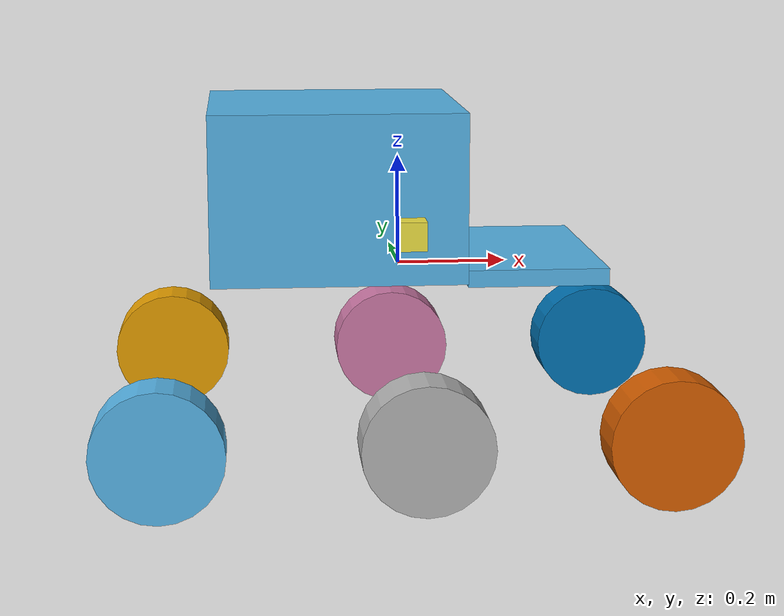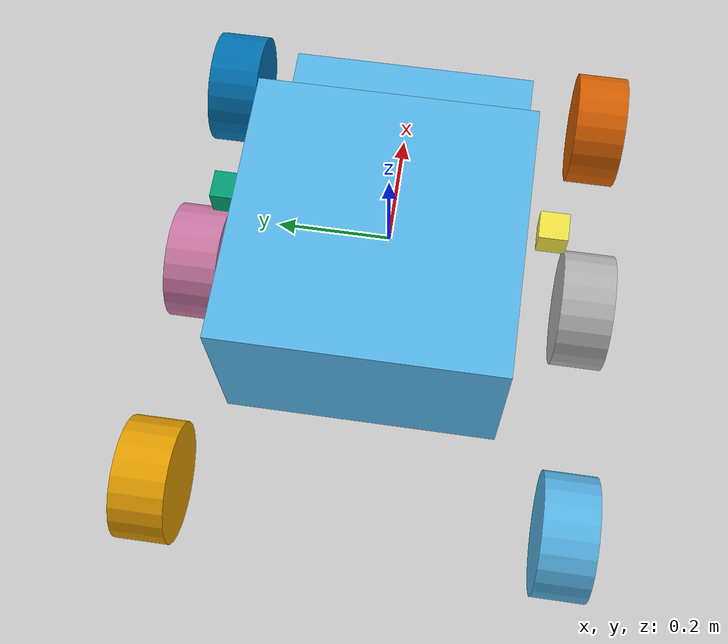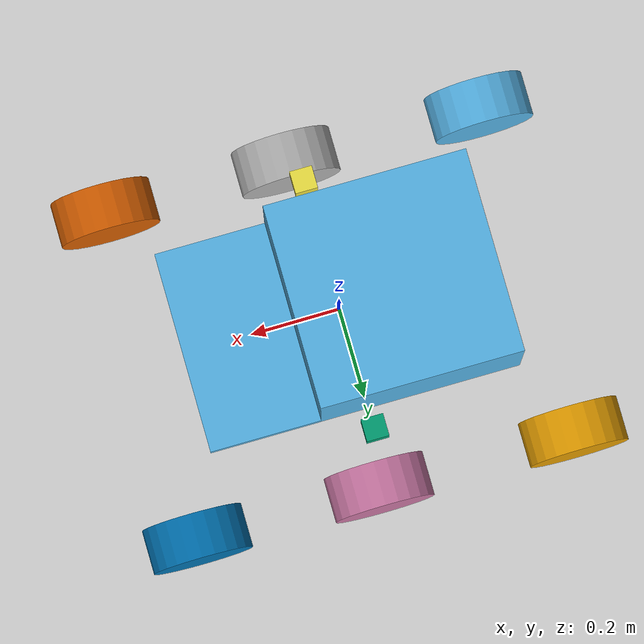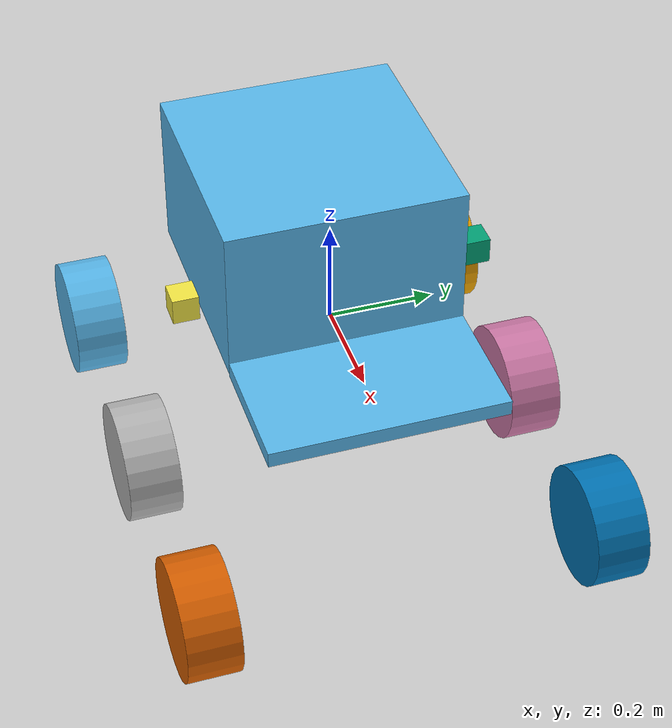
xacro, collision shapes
<?xml version="1.0"?>
<robot name="uirover" xmlns:xacro="http://www.ros.org/wiki/xacro">
  <!-- IMPORTS -->
  <xacro:include filename="$(find uirover_description)/xacro/utility_macros.xacro" />
  <xacro:include filename="$(find uirover_description)/xacro/properties.xacro" />

  <!-- BASE LINK -->
  <link name="base_link"></link>

  <!-- CHASSIS -->
  <link name="chassis">
    <visual>
      <origin xyz="-0.35 0.203 0.0" rpy="${pi/2} 0.0 0.0" />
      <geometry>
        <mesh filename="file://$(find uirover_description)/dae/chassis.dae" />
      </geometry>
    </visual>
    <collision>
      <geometry>
        <box size="0.45 0.45 0.3" />
      </geometry>
      <origin xyz="-0.12 0 0.15" />
    </collision>
    <collision>
      <geometry>
        <box size="0.25 0.45 0.03" />
      </geometry>
      <origin xyz="0.23 0 0.01"/>
    </collision>
    <xacro:box_inertia_tensor mass="30" len_x="0.65" len_y="0.4" len_z="0.2" />
  </link>
  <joint name="chassis_joint" type="fixed">
    <parent link="base_link" />
    <child link="chassis" />
    <origin xyz="0 0 0" rpy="0 0 0" />
  </joint>

  <!--L
  SUSPENSIONS-->
  <link name="l_suspension">
    <visual>
      <origin xyz="0.085 0.02 -0.06" rpy="${pi/2} 0.0 ${pi}" />
      <geometry>
        <mesh filename="file://$(find uirover_description)/dae/suspension.dae" />
      </geometry>
    </visual>
    <collision>
      <geometry>
        <box size="0.05 0.05 0.05" />
      </geometry>
    </collision>
    <xacro:box_inertia_tensor mass="2" len_x="0.65" len_y="0.05" len_z="0.15" x="0.1" y="0" z="-0.1" />
  </link>
  <joint name="l_suspension_joint" type="fixed">
    <parent link="chassis" />
    <child link="l_suspension" />
    <origin xyz="0 0.28 0.1" rpy="0 0 0" />
    <axis xyz="0 1 0" />
  </joint>

  <!--R
  SUSPENSIONS-->
  <link name="r_suspension">
    <visual>
      <origin xyz="0.085 0.02 -0.06" rpy="${pi/2} 0.0 ${pi}" />
      <geometry>
        <mesh filename="file://$(find uirover_description)/dae/suspension.dae" />
      </geometry>
    </visual>
    <collision>
      <geometry>
        <box size="0.05 0.05 0.05" />
      </geometry>
    </collision>
    <xacro:box_inertia_tensor mass="2" len_x="0.65" len_y="0.05" len_z="0.15" x="0.1" y="0" z="-0.1" />
  </link>
  <joint name="r_suspension_joint" type="fixed">
    <parent link="chassis" />
    <child link="r_suspension" />
    <origin xyz="0 -0.28 0.1" rpy="0 0 0" />
    <axis xyz="0 1 0" />
  </joint>

  <!-- WHEELS -->
  <xacro:wheel name="fl_wheel" x="0.436" y="0.1" z="-0.342" parent="l_suspension" side="left" />
  <xacro:wheel name="fr_wheel" x="0.436" y="-0.1" z="-0.342" parent="r_suspension" side="right" />
  <xacro:wheel name="ml_wheel" x="0.016" y="0.1" z="-0.342" parent="l_suspension" side="left" />
  <xacro:wheel name="mr_wheel" x="0.016" y="-0.1" z="-0.342" parent="r_suspension" side="right" />
  <xacro:wheel name="bl_wheel" x="-0.434" y="0.1" z="-0.342" parent="l_suspension" side="left" />
  <xacro:wheel name="br_wheel" x="-0.434" y="-0.1" z="-0.342" parent="r_suspension" side="right" />

  <!-- Robot Footprint -->
  <!-- This is needed for nav libraries. Its the 2D top-down profile of the robot. Makes for simpler
  collision detection. -->
  <link name="base_footprint" />
  <joint name="base_footprint_joint" type="fixed">
    <parent link="base_link" />
    <child link="base_footprint" />
    <origin xyz="0.0 0.0 -0.3" rpy="0 0 0" />
  </joint>

</robot>

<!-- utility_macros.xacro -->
<robot name="uirover" xmlns:xacro="http://ros.org/wiki/xacro">

  <!-- BOX INERTIA -->
  <xacro:macro name="box_inertia_tensor" params="mass len_x len_y len_z x:=0 y:=0 z:=0">
    <inertial>
      <mass value="${mass}" />
      <inertia ixx="${(1/12)*mass*(len_z*len_z+len_y*len_y)}" ixy="0.0" ixz="0.0"
        iyy="${(1/12)*mass*(len_z*len_z+len_x*len_x)}" iyz="0.0"
        izz="${(1/12)*mass*(len_x*len_x+len_y*len_y)}" />
        <origin xyz="${x} ${y} ${z}" rpy="0 0 0" />
    </inertial>
  </xacro:macro>

  <!-- CYLINDER INERTIA -->
  <xacro:macro name="cylinder_inertia_tensor" params="mass radius length">
    <inertial>
      <mass value="${mass}" />
      <inertia ixx="${(1/12)*mass*(3*radius*radius+length*length)}" ixy="0.0" ixz="0.0"
        iyy="${(1/12)*mass*(3*radius*radius+length*length)}" iyz="0.0"
        izz="${(1/2)*mass*radius*radius}" />
    </inertial>
  </xacro:macro>

  <!-- COLLIDABLE BOX -->
  <xacro:macro name="box" params="name x y z mass">
    <link name="${name}">
      <visual>
        <geometry>
          <box size="${x} ${y} ${z}" />
        </geometry>
        <material name="Grey">
          <color rgba="0.7 0.7 0.7 1.0" />
        </material>
      </visual>
      <collision>
        <geometry>
          <box size="${x} ${y} ${z}" />
        </geometry>
      </collision>
      <xacro:box_inertia_tensor mass="${mass}" len_x="${x}" len_y="${y}" len_z="${z}" />
    </link>
  </xacro:macro>

  <!-- WHEEL -->
  <xacro:macro name="wheel" params="name x y z parent side:=^|left">
    <link name="${name}">
      <visual>
        <xacro:if value="${side == 'left'}">
          <origin xyz="0 0 -0.08" rpy="0 ${pi/2} 0" />
        </xacro:if>
        <xacro:if value="${side == 'right'}">
          <origin xyz="0 0 0.08" rpy="0 ${-pi/2} 0" />
        </xacro:if>
        <geometry>
          <mesh filename="file://$(find uirover_description)/dae/wheel.dae"/>
        </geometry>
      </visual>
      <collision>
        <geometry>
          <cylinder radius="${wheel_diameter/2}" length="${wheel_width}" />
        </geometry>
      </collision>
      <xacro:cylinder_inertia_tensor mass="${wheel_mass}" radius="${wheel_diameter/2}"
        length="${wheel_width}" />
    </link>
    <joint name="${name}_joint" type="continuous">
      <parent link="${parent}" />
      <child link="${name}" />
      <origin xyz="${x} ${y} ${z}" rpy="${-pi/2} 0 0" />
      <axis xyz="0 0 1" />
      <limit effort="30.0" velocity="10.0"/> <!-- 10 rad/s ~ 2.5 mph top speed assuming 9 in diameter tires-->
    </joint>
  </xacro:macro>
</robot>

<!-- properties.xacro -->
<robot name="uirover" xmlns:xacro="http://ros.org/wiki/xacro">
    <xacro:property name="wheel_diameter" value="0.23" />
    <xacro:property name="chassis_width" value="0.45" />
    <xacro:property name="chassis_length" value="0.45" />
    <xacro:property name="chassis_height" value="0.30" />
    <xacro:property name="chassis_mass" value="5" />

    <xacro:property name="arm_platform_width" value="${chassis_width}" />
    <xacro:property name="arm_platform_length" value="0.3" />
    <xacro:property name="arm_platform_height" value="0.05" />
    <xacro:property name="arm_platform_mass" value="3" />

    <xacro:property name="wheel_width" value="0.1" />
    <xacro:property name="wheel_diameter" value="0.228" />
    <xacro:property name="wheel_mass" value="0.5" />
    <xacro:property name="wheel_distance_side" value="0.4" />
    <xacro:property name="wheel_spacing" value="0.4" />
    <xacro:property name="suspension_height" value="0.20"/>
</robot>
